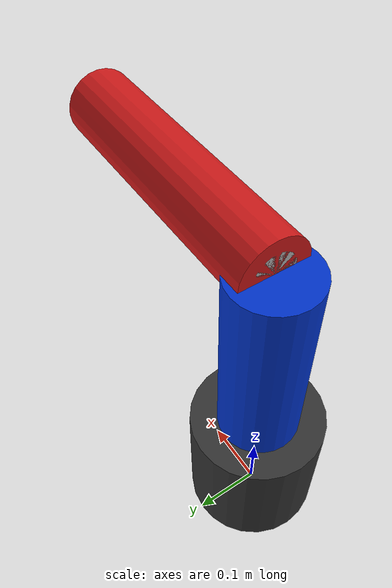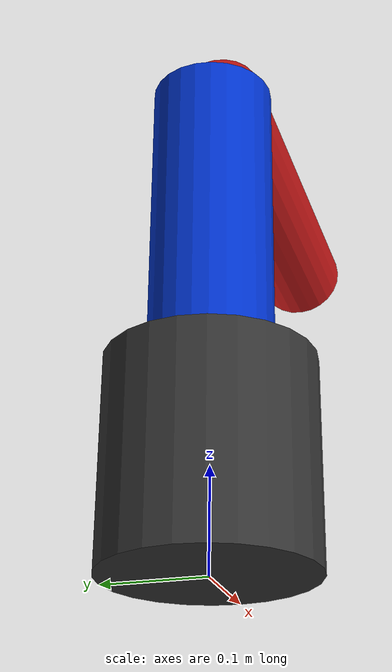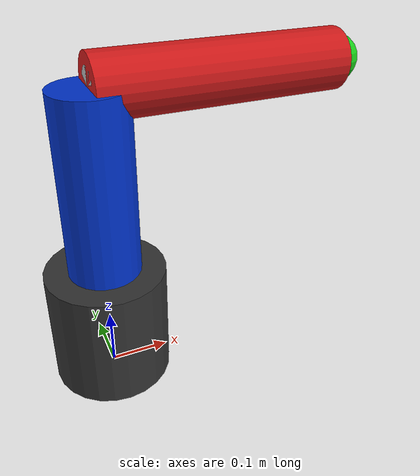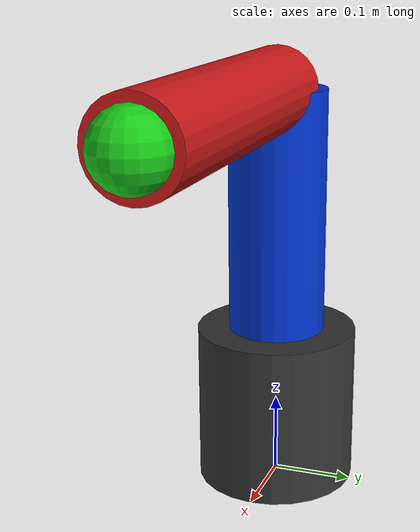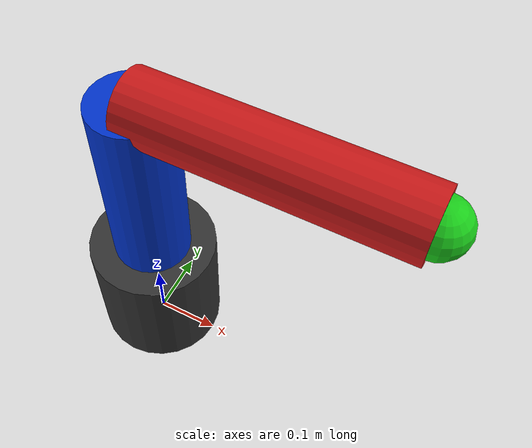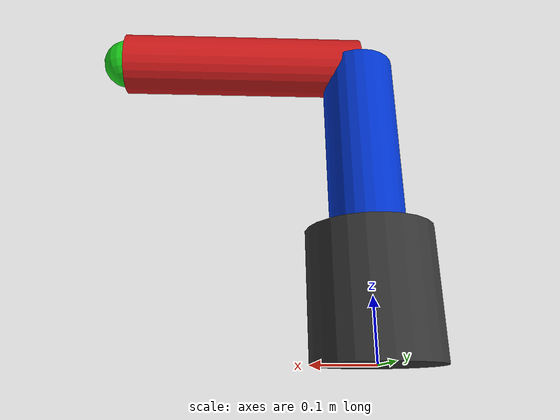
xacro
<?xml version="1.0"?>
<robot name="rrp_manipulator" xmlns:xacro="http://www.ros.org/wiki/xacro">

  <!-- Base World Link -->
  <link name="world"/>

  <joint name="world_joint" type="fixed">
    <parent link="world"/>
    <child link="base_link"/>
    <origin xyz="0 0 0" rpy="0 0 0"/>
  </joint>

  <!-- Base Link -->
  <link name="base_link">
    <visual>
      <origin xyz="0 0 0.1" rpy="0 0 0"/>
      <geometry>
        <cylinder radius="0.1" length="0.2"/>
      </geometry>
      <material name="dark_grey">
        <color rgba="0.2 0.2 0.2 1.0"/>
      </material>
    </visual>
    <collision>
      <origin xyz="0 0 0.1" rpy="0 0 0"/>
      <geometry>
        <cylinder radius="0.1" length="0.2"/>
      </geometry>
    </collision>
    <inertial>
      <mass value="5.0"/>
      <origin xyz="0 0 0.1"/>
      <inertia ixx="0.02" ixy="0" ixz="0" iyy="0.02" iyz="0" izz="0.025"/>
    </inertial>
  </link>

  <!-- Joint 1: Revolute Yaw (Z-Axis Rotation) -->
  <joint name="joint_1" type="revolute">
    <parent link="base_link"/>
    <child link="shoulder_link"/>
    <origin xyz="0 0 0.2" rpy="0 0 0"/>
    <axis xyz="0 0 1"/>
    <limit lower="-3.1415" upper="3.1415" effort="100" velocity="1.5"/>
  </joint>

  <!-- Link 1: Shoulder Link -->
  <link name="shoulder_link">
    <visual>
      <origin xyz="0 0 0.15" rpy="0 0 0"/>
      <geometry>
        <cylinder radius="0.06" length="0.3"/>
      </geometry>
      <material name="blue">
        <color rgba="0.0 0.2 0.8 1.0"/>
      </material>
    </visual>
    <collision>
      <origin xyz="0 0 0.15" rpy="0 0 0"/>
      <geometry>
        <cylinder radius="0.06" length="0.3"/>
      </geometry>
    </collision>
    <inertial>
      <mass value="2.0"/>
      <origin xyz="0 0 0.15"/>
      <inertia ixx="0.01" ixy="0" ixz="0" iyy="0.01" iyz="0" izz="0.003"/>
    </inertial>
  </link>

  <!-- Joint 2: Revolute Pitch (Y-Axis Rotation) -->
  <joint name="joint_2" type="revolute">
    <parent link="shoulder_link"/>
    <child link="upper_arm_link"/>
    <origin xyz="0 0 0.3" rpy="0 0 0"/>
    <axis xyz="0 1 0"/>
    <limit lower="-1.5708" upper="1.5708" effort="100" velocity="1.5"/>
  </joint>

  <!-- Link 2: Upper Arm Link -->
  <link name="upper_arm_link">
    <visual>
      <origin xyz="0.2 0 0" rpy="0 1.5708 0"/>
      <geometry>
        <cylinder radius="0.05" length="0.4"/>
      </geometry>
      <material name="red">
        <color rgba="0.8 0.1 0.1 1.0"/>
      </material>
    </visual>
    <collision>
      <origin xyz="0.2 0 0" rpy="0 1.5708 0"/>
      <geometry>
        <cylinder radius="0.05" length="0.4"/>
      </geometry>
    </collision>
    <inertial>
      <mass value="1.5"/>
      <origin xyz="0.2 0 0"/>
      <inertia ixx="0.002" ixy="0" ixz="0" iyy="0.02" iyz="0" izz="0.02"/>
    </inertial>
  </link>

  <!-- Joint 3: Prismatic Extension (Telescopic Link along X-Axis) -->
  <joint name="joint_3" type="prismatic">
    <parent link="upper_arm_link"/>
    <child link="prismatic_rod_link"/>
    <origin xyz="0 0 0" rpy="0 0 0"/>
    <axis xyz="1 0 0"/>
    <limit lower="0.0" upper="0.4" effort="100" velocity="0.5"/>
  </joint>

  <!-- Link 3: Prismatic Rod -->
  <link name="prismatic_rod_link">
    <visual>
      <origin xyz="0.2 0 0" rpy="0 1.5708 0"/>
      <geometry>
        <cylinder radius="0.03" length="0.4"/>
      </geometry>
      <material name="silver">
        <color rgba="0.7 0.7 0.7 1.0"/>
      </material>
    </visual>
    <collision>
      <origin xyz="0.2 0 0" rpy="0 1.5708 0"/>
      <geometry>
        <cylinder radius="0.03" length="0.4"/>
      </geometry>
    </collision>
    <inertial>
      <mass value="0.8"/>
      <origin xyz="0.2 0 0"/>
      <inertia ixx="0.0005" ixy="0" ixz="0" iyy="0.006" iyz="0" izz="0.006"/>
    </inertial>
  </link>

  <!-- End-Effector Link (Tool Tip) -->
  <joint name="ee_joint" type="fixed">
    <parent link="prismatic_rod_link"/>
    <child link="ee_link"/>
    <origin xyz="0.4 0 0" rpy="0 0 0"/>
  </joint>

  <link name="ee_link">
    <visual>
      <geometry>
        <sphere radius="0.04"/>
      </geometry>
      <material name="green">
        <color rgba="0.1 0.8 0.1 1.0"/>
      </material>
    </visual>
  </link>

</robot>
